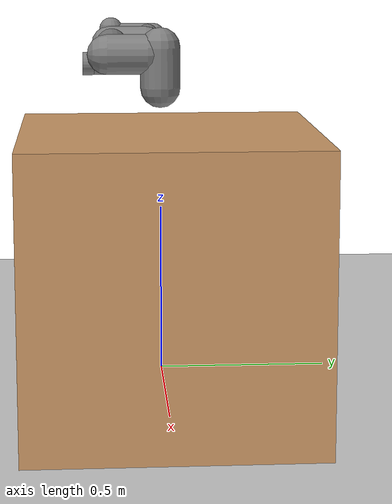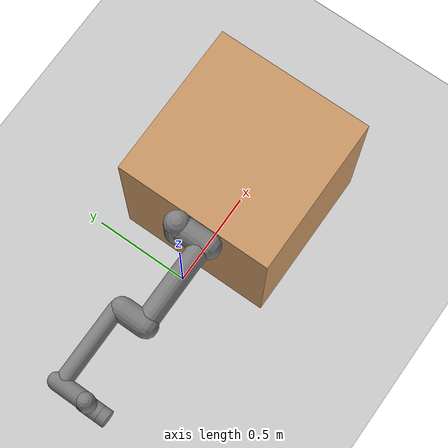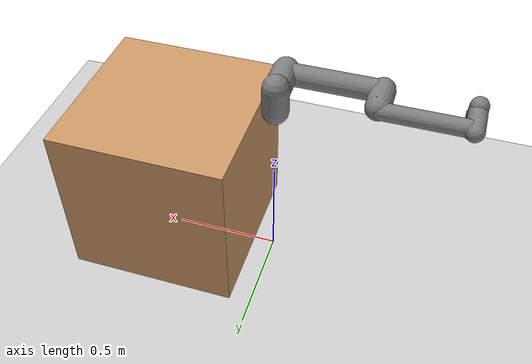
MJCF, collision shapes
<mujoco model="ur5e_simulation">
    <compiler angle="radian" meshdir="assets/ur5e" inertiagrouprange="0 0"/>
    <option impratio="20" cone="elliptic" density="1.2" viscosity="0.00002" integrator="implicitfast"/>
    <size nconmax="5000" njmax="5000"/>

    <!-- Default settings -->
    <default>
        <material specular="0.5" shininess="0.25"/>
        <joint axis="0 1 0" range="-6.28319 6.28319" armature="0.1"/>
        <geom type="mesh" contype="0" conaffinity="0" group="2"/>
        <site size="0.001" rgba="0.5 0.5 0.5 0.3" group="4"/>
    </default>

    <!-- UR5e assets -->
    <include file="assets/ur5e/ur5e_assets.xml"/>

    <!-- Arena -->
    <include file="assets/common_arena/simple_plane.xml"/>

    <!-- UR5e body -->
    <include file="assets/ur5e/ur5e_body.xml"/>

    <!-- UR5e actuators -->
    <include file="assets/ur5e/ur5e_actuators.xml"/>

    <!-- Keyframes for different poses -->
    <keyframe>
        <key name="home" qpos="-1.5708 -1.5708 1.5708 -1.5708 -1.5708 0"
             ctrl="-1.5708 -1.5708 1.5708 -1.5708 -1.5708 0"/>
        <key name="ready" qpos="0 -1.5708 0 -1.5708 0 0"
             ctrl="0 -1.5708 0 -1.5708 0 0"/>
    </keyframe>

</mujoco>

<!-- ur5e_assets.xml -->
<mujocoinclude>
  <compiler angle="radian" meshdir="assets" texturedir="assets" autolimits="true"/>
  <default>
    <joint axis="0 1 0" range="-6.28319 6.28319"/>
    <position ctrlrange="-6.2831 6.2831"/>

    <default class="visual">
      <geom type="mesh" contype="0" conaffinity="0" group="2"/>
    </default>

    <default class="collision">
      <geom type="capsule" group="3"/>
      <default class="eef_collision">
        <geom type="cylinder"/>
      </default>
    </default>
    <site size="0.001" rgba="0.5 0.5 0.5 0.3" group="4"/>

    <!-- Reference:
      https://www.universal-robots.com/articles/ur/robot-care-maintenance/max-joint-torques/ -->
    <default class="size3">
      <joint armature="0.1" damping="200"/>
      <position kp="3500" forcerange="-150 150"/>
      <default class="size3_limited">
      <!-- NOTE(Mandi): temp change 3.1415 into 2.1415 -->
        <joint range="-3.1415 2.1415"/>
        <position ctrlrange="-3.1415 2.1415"/>
      </default>
    </default>
    <default class="size1">
      <joint armature="0.1" damping="15"/>
      <position kp="3000" forcerange="-28 28"/>
    </default>

    <default class="active_adhesion">
      <geom margin=".01" gap=".01"/>
    </default>
  </default>

  <asset>
    <material name="black" specular="0.5" shininess="0.25" rgba="0.033 0.033 0.033 1"/>
    <material name="jointgray" specular="0.5" shininess="0.25" rgba="0.278 0.278 0.278 1"/>
    <material name="linkgray" specular="0.5" shininess="0.25" rgba="0.82 0.82 0.82 1"/>
    <material name="urblue" specular="0.5" shininess="0.25" rgba="0.49 0.678 0.8 1"/>

    <mesh file="ur5e/assets/base_0.obj"/>
    <mesh file="ur5e/assets/base_1.obj"/>
    <mesh file="ur5e/assets/shoulder_0.obj"/>
    <mesh file="ur5e/assets/shoulder_1.obj"/>
    <mesh file="ur5e/assets/shoulder_2.obj"/>
    <mesh file="ur5e/assets/upperarm_0.obj"/>
    <mesh file="ur5e/assets/upperarm_1.obj"/>
    <mesh file="ur5e/assets/upperarm_2.obj"/>
    <mesh file="ur5e/assets/upperarm_3.obj"/>
    <mesh file="ur5e/assets/forearm_0.obj"/>
    <mesh file="ur5e/assets/forearm_1.obj"/>
    <mesh file="ur5e/assets/forearm_2.obj"/>
    <mesh file="ur5e/assets/forearm_3.obj"/>
    <mesh file="ur5e/assets/wrist1_0.obj"/>
    <mesh file="ur5e/assets/wrist1_1.obj"/>
    <mesh file="ur5e/assets/wrist1_2.obj"/>
    <mesh file="ur5e/assets/wrist2_0.obj"/>
    <mesh file="ur5e/assets/wrist2_1.obj"/>
    <mesh file="ur5e/assets/wrist2_2.obj"/>
    <mesh file="ur5e/assets/wrist3.obj"/>

     <!-- suction gripper -->
    <mesh file="suction/base.obj" name="suction_base_mesh" scale="0.001 0.001 0.001" />
    <mesh file="suction/mid_suction.obj" name="suction_mid_mesh" scale="0.001 0.001 0.001" />
    <mesh file="suction/head.obj" name="suction_head_mesh" scale="0.0015 0.0015 0.0015" />
    <mesh file="suction/tip.obj" name="suction_tip_mesh" scale="0.0015 0.0015 0.0015" />
    <material name="DarkGrey" rgba="0.2 0.2 0.2 1.0"  />
    <material name="suction_blue" rgba="0.18039216 0.50588235 0.77254902 1"/>

  </asset>

</mujocoinclude>

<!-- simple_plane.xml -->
<!-- Simple plane environment -->
<mujoco>
  <asset>
    <material name="grid" rgba="0.8 0.8 0.8 1"/>
    <material name="wall" rgba="0.7 0.7 0.7 1"/>
  </asset>

  <worldbody>
    <!-- Ground plane -->
    <geom name="ground" type="plane" size="5 5 0.1" material="grid" friction="1 0.005 0.0001"/>

    <!-- Lighting -->
    <light diffuse=".5 .5 .5" pos="0 0 3" dir="0 0 -1"/>

    <!-- Table -->
    <body name="table" pos="0.5 0 0.4">
      <geom type="box" size="0.4 0.4 0.4" rgba="0.8 0.6 0.4 1" friction="1 0.005 0.0001"/>
    </body>
  </worldbody>
</mujoco>

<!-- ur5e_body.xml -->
<!-- UR5e Body Structure -->
<mujoco>
  <worldbody>
    <!-- UR5e Base -->
    <body name="ur5e_base" pos="0 0 0.8" quat="0 0 0 -1">
      <inertial mass="4.0" pos="0 0 0" diaginertia="0.00443333156 0.00443333156 0.0072"/>
      <geom mesh="base_0" material="black" type="mesh" contype="0" conaffinity="0" group="2"/>
      <geom mesh="base_1" material="jointgray" type="mesh" contype="0" conaffinity="0" group="2"/>

      <!-- Shoulder Link -->
      <body name="shoulder_link" pos="0 0 0.163">
        <inertial mass="3.7" pos="0 0 0" diaginertia="0.0102675 0.0102675 0.00666"/>
        <joint name="shoulder_pan_joint" axis="0 0 1" range="-6.28319 6.28319" armature="0.1"/>
        <geom mesh="shoulder_0" material="urblue" type="mesh" contype="0" conaffinity="0" group="2"/>
        <geom mesh="shoulder_1" material="black" type="mesh" contype="0" conaffinity="0" group="2"/>
        <geom mesh="shoulder_2" material="jointgray" type="mesh" contype="0" conaffinity="0" group="2"/>
        <geom type="capsule" size="0.06 0.06" pos="0 0 -0.04" group="3"/>

        <!-- Upper Arm Link -->
        <body name="upper_arm_link" pos="0 0.138 0" quat="1 0 1 0">
          <inertial mass="8.393" pos="0 0 0.2125" diaginertia="0.133886 0.133886 0.0151074"/>
          <joint name="shoulder_lift_joint" axis="0 1 0" range="-6.28319 6.28319" armature="0.1"/>
          <geom mesh="upperarm_0" material="linkgray" type="mesh" contype="0" conaffinity="0" group="2"/>
          <geom mesh="upperarm_1" material="black" type="mesh" contype="0" conaffinity="0" group="2"/>
          <geom mesh="upperarm_2" material="jointgray" type="mesh" contype="0" conaffinity="0" group="2"/>
          <geom mesh="upperarm_3" material="urblue" type="mesh" contype="0" conaffinity="0" group="2"/>
          <geom type="capsule" pos="0 -0.04 0" quat="1 1 0 0" size="0.06 0.06" group="3"/>
          <geom type="capsule" size="0.05 0.2" pos="0 0 0.2" group="3"/>

          <!-- Forearm Link -->
          <body name="forearm_link" pos="0 -0.131 0.425">
            <inertial mass="2.275" pos="0 0 0.196" diaginertia="0.0311796 0.0311796 0.004095"/>
            <joint name="elbow_joint" axis="0 1 0" range="-3.1415 3.1415" armature="0.1"/>
            <geom mesh="forearm_0" material="urblue" type="mesh" contype="0" conaffinity="0" group="2"/>
            <geom mesh="forearm_1" material="linkgray" type="mesh" contype="0" conaffinity="0" group="2"/>
            <geom mesh="forearm_2" material="black" type="mesh" contype="0" conaffinity="0" group="2"/>
            <geom mesh="forearm_3" material="jointgray" type="mesh" contype="0" conaffinity="0" group="2"/>
            <geom type="capsule" pos="0 0.08 0" quat="1 1 0 0" size="0.055 0.06" group="3"/>
            <geom type="capsule" size="0.038 0.19" pos="0 0 0.2" group="3"/>

            <!-- Wrist 1 Link -->
            <body name="wrist_1_link" pos="0 0 0.392" quat="1 0 1 0">
              <inertial mass="1.219" pos="0 0.127 0" diaginertia="0.0025599 0.0025599 0.0021942"/>
              <joint name="wrist_1_joint" axis="0 1 0" range="-6.28319 6.28319" armature="0.1"/>
              <geom mesh="wrist1_0" material="black" type="mesh" contype="0" conaffinity="0" group="2"/>
              <geom mesh="wrist1_1" material="urblue" type="mesh" contype="0" conaffinity="0" group="2"/>
              <geom mesh="wrist1_2" material="jointgray" type="mesh" contype="0" conaffinity="0" group="2"/>
              <geom type="capsule" pos="0 0.05 0" quat="1 1 0 0" size="0.04 0.07" group="3"/>

              <!-- Wrist 2 Link -->
              <body name="wrist_2_link" pos="0 0.127 0">
                <inertial mass="1.219" pos="0 0 0.1" diaginertia="0.0025599 0.0025599 0.0021942"/>
                <joint name="wrist_2_joint" axis="0 0 1" range="-6.28319 6.28319" armature="0.1"/>
                <geom mesh="wrist2_0" material="black" type="mesh" contype="0" conaffinity="0" group="2"/>
                <geom mesh="wrist2_1" material="urblue" type="mesh" contype="0" conaffinity="0" group="2"/>
                <geom mesh="wrist2_2" material="jointgray" type="mesh" contype="0" conaffinity="0" group="2"/>
                <geom type="capsule" size="0.04 0.06" pos="0 0 0.04" group="3"/>
                <geom type="capsule" pos="0 0.02 0.1" quat="1 1 0 0" size="0.04 0.04" group="3"/>

                <!-- Wrist 3 Link -->
                <body name="wrist_3_link" pos="0 0 0.1">
                  <inertial mass="0.1889" pos="0 0.0771683 0" quat="1 0 0 1"
                    diaginertia="0.000132134 9.90863e-05 9.90863e-05"/>
                  <joint name="wrist_3_joint" axis="0 1 0" range="-6.28319 6.28319" armature="0.1"/>
                  <geom material="linkgray" mesh="wrist3" type="mesh" contype="0" conaffinity="0" group="2"/>
                  <geom type="cylinder" pos="0 0.08 0" quat="1 1 0 0" size="0.04 0.02" group="3"/>
                  <site name="eef_site" pos="0 0.1 0" quat="-1 1 0 0" size="0.01" rgba="1 0 0 0.5"/>
                </body>
              </body>
            </body>
          </body>
        </body>
      </body>
    </body>
  </worldbody>
</mujoco>

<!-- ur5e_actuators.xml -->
<!-- UR5e Actuators -->
<mujoco>
  <actuator>
    <!-- Joint actuators with PID control -->
    <general name="shoulder_pan_actuator" joint="shoulder_pan_joint"
             gaintype="fixed" biastype="affine"
             ctrlrange="-6.2831 6.2831"
             gainprm="2000" biasprm="0 -2000 -400"
             forcerange="-150 150"/>

    <general name="shoulder_lift_actuator" joint="shoulder_lift_joint"
             gaintype="fixed" biastype="affine"
             ctrlrange="-6.2831 6.2831"
             gainprm="2000" biasprm="0 -2000 -400"
             forcerange="-150 150"/>

    <general name="elbow_actuator" joint="elbow_joint"
             gaintype="fixed" biastype="affine"
             ctrlrange="-3.1415 3.1415"
             gainprm="2000" biasprm="0 -2000 -400"
             forcerange="-150 150"/>

    <general name="wrist_1_actuator" joint="wrist_1_joint"
             gaintype="fixed" biastype="affine"
             ctrlrange="-6.2831 6.2831"
             gainprm="500" biasprm="0 -500 -100"
             forcerange="-28 28"/>

    <general name="wrist_2_actuator" joint="wrist_2_joint"
             gaintype="fixed" biastype="affine"
             ctrlrange="-6.2831 6.2831"
             gainprm="500" biasprm="0 -500 -100"
             forcerange="-28 28"/>

    <general name="wrist_3_actuator" joint="wrist_3_joint"
             gaintype="fixed" biastype="affine"
             ctrlrange="-6.2831 6.2831"
             gainprm="500" biasprm="0 -500 -100"
             forcerange="-28 28"/>
  </actuator>
</mujoco>
